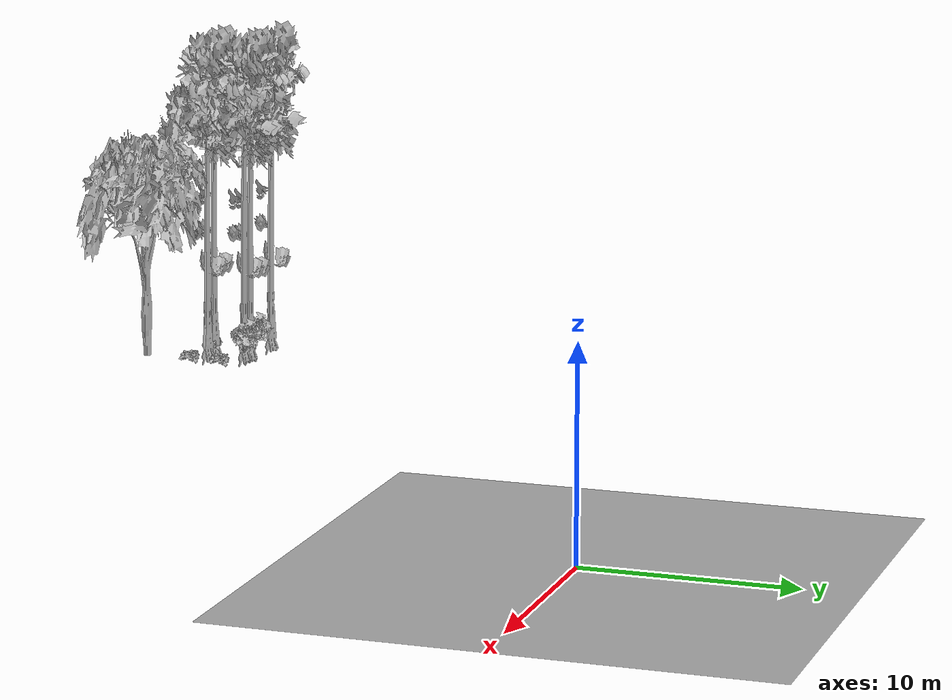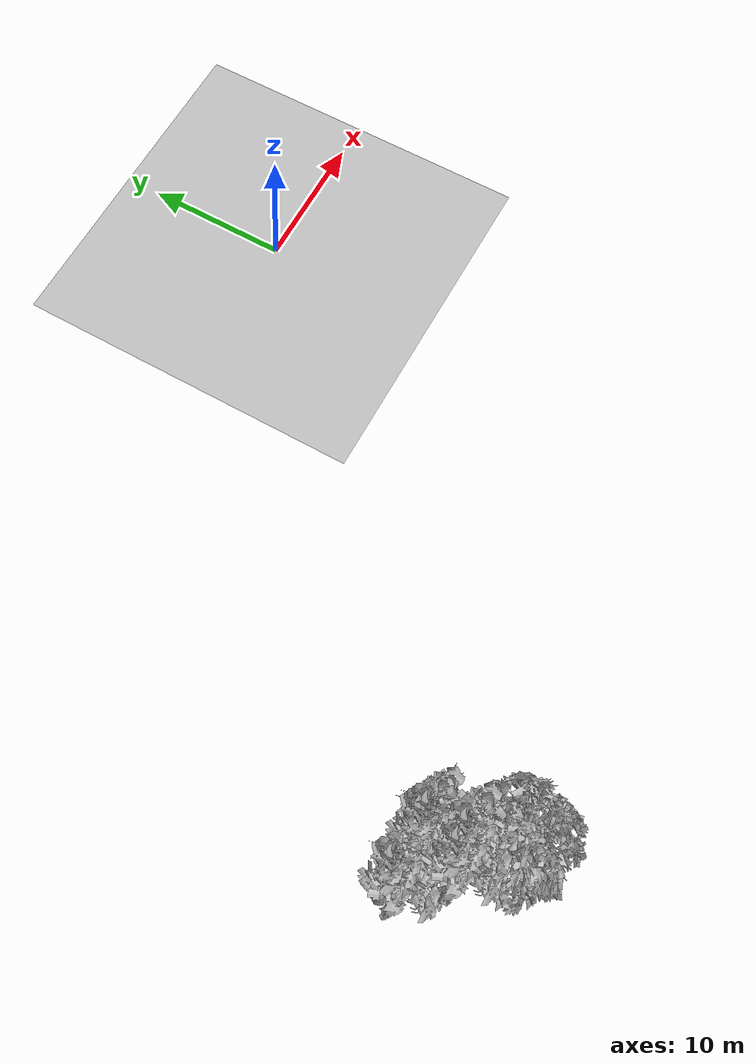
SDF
<sdf version="1.7">
 <world name="default">
  <model name="ground_plane">
   <static>1</static>
   <link name="link">
    <collision name="collision">
     <pose>-50 0 0 0 -0 0</pose>
     <geometry><plane><normal>0 0 1</normal><size>80 80</size></plane></geometry>
     <surface><contact><ode><min_depth>0.01</min_depth><max_vel>0</max_vel></ode></contact></surface>
    </collision>
    <visual name="grass">
     <cast_shadows>0</cast_shadows>
     <geometry>
      <mesh>
       <scale>0.46714285714285714 0.46714285714285714 0.1</scale>
       <uri>file://grass_plane/meshes/grass_plane.dae</uri>
      </mesh>
     </geometry>
    </visual>
   </link>
  </model>
  <model name="Tree 275">
   <static>1</static>
   <pose>-31.24578882245885 -33.744727753787494 0 1.57079 -0 0</pose>
   <link name="link">
    <collision name="collision">
     <geometry><mesh><scale>3.5 5 3.5</scale><uri>model://tree_2/meshes/tree_2.obj</uri></mesh></geometry>
    </collision>
    <visual name="visual">
     <geometry><mesh><scale>3.5 5 3.5</scale><uri>model://tree_2/meshes/tree_2.obj</uri></mesh></geometry>
    </visual>
   </link>
  </model>
  <model name="Tree 276">
   <static>1</static>
   <pose>-33.84621007006877 -29.200234330896517 0 1.57079 -0 0</pose>
   <link name="link">
    <collision name="collision">
     <geometry><mesh><scale>3.5 5 3.5</scale><uri>model://tree_9/meshes/tree_9.obj</uri></mesh></geometry>
    </collision>
    <visual name="visual">
     <geometry><mesh><scale>3.5 5 3.5</scale><uri>model://tree_9/meshes/tree_9.obj</uri></mesh></geometry>
    </visual>
   </link>
  </model>
  <model name="Tree 370">
   <static>1</static>
   <pose>-33.638118732959136 -31.243243150982998 0 1.57079 -0 0</pose>
   <link name="link">
    <collision name="collision">
     <geometry><mesh><scale>3.5 5 3.5</scale><uri>model://tree_9/meshes/tree_9.obj</uri></mesh></geometry>
    </collision>
    <visual name="visual">
     <geometry><mesh><scale>3.5 5 3.5</scale><uri>model://tree_9/meshes/tree_9.obj</uri></mesh></geometry>
    </visual>
   </link>
  </model>
  <model name="Tree 442">
   <static>1</static>
   <pose>-37.02790973664366 -28.90920849827892 0 1.57079 -0 0</pose>
   <link name="link">
    <collision name="collision">
     <geometry><mesh><scale>3.5 5 3.5</scale><uri>model://tree_9/meshes/tree_9.obj</uri></mesh></geometry>
    </collision>
    <visual name="visual">
     <geometry><mesh><scale>3.5 5 3.5</scale><uri>model://tree_9/meshes/tree_9.obj</uri></mesh></geometry>
    </visual>
   </link>
  </model>
  <model name="Tree 447">
   <static>1</static>
   <pose>-34.24623042665584 -29.006214268171302 0 1.57079 -0 0</pose>
   <link name="link">
    <collision name="collision">
     <geometry><mesh><scale>3.5 5 3.5</scale><uri>model://tree_9/meshes/tree_9.obj</uri></mesh></geometry>
    </collision>
    <visual name="visual">
     <geometry><mesh><scale>3.5 5 3.5</scale><uri>model://tree_9/meshes/tree_9.obj</uri></mesh></geometry>
    </visual>
   </link>
  </model>
  <model name="Tree 564">
   <static>1</static>
   <pose>-34.687092464134665 -31.29168452826584 0 1.57079 -0 0</pose>
   <link name="link">
    <collision name="collision">
     <geometry><mesh><scale>3.5 5 3.5</scale><uri>model://tree_9/meshes/tree_9.obj</uri></mesh></geometry>
    </collision>
    <visual name="visual">
     <geometry><mesh><scale>3.5 5 3.5</scale><uri>model://tree_9/meshes/tree_9.obj</uri></mesh></geometry>
    </visual>
   </link>
  </model>
  <model name="Bush 285">
   <static>1</static>
   <pose>-34.8001001454227 -31.471189666302266 0 1.57079 -0 0</pose>
   <link name="link">
    <collision name="collision">
     <geometry><mesh><scale>2 2 2</scale><uri>model://bush_2/meshes/bush_2.obj</uri></mesh></geometry>
     <surface><contact><collide_without_contact>false</collide_without_contact></contact></surface>
    </collision>
    <visual name="visual">
     <geometry><mesh><scale>2 2 2</scale><uri>model://bush_2/meshes/bush_2.obj</uri></mesh></geometry>
    </visual>
   </link>
  </model>
  <model name="Bush 328">
   <static>1</static>
   <pose>-31.458223966410564 -31.387157155026884 0 1.57079 -0 0</pose>
   <link name="link">
    <collision name="collision">
     <geometry><mesh><scale>2 2 2</scale><uri>model://bush_2/meshes/bush_2.obj</uri></mesh></geometry>
     <surface><contact><collide_without_contact>false</collide_without_contact></contact></surface>
    </collision>
    <visual name="visual">
     <geometry><mesh><scale>2 2 2</scale><uri>model://bush_2/meshes/bush_2.obj</uri></mesh></geometry>
    </visual>
   </link>
  </model>
  <model name="Bush 330">
   <static>1</static>
   <pose>-35.03194522509525 -29.108330152825115 0 1.57079 -0 0</pose>
   <link name="link">
    <collision name="collision">
     <geometry><mesh><scale>2 2 2</scale><uri>model://bush_1/meshes/bush_1.obj</uri></mesh></geometry>
     <surface><contact><collide_without_contact>false</collide_without_contact></contact></surface>
    </collision>
    <visual name="visual">
     <geometry><mesh><scale>2 2 2</scale><uri>model://bush_1/meshes/bush_1.obj</uri></mesh></geometry>
    </visual>
   </link>
  </model>
  <model name="Bush 333">
   <static>1</static>
   <pose>-33.460738265178215 -28.452214347048994 0 1.57079 -0 0</pose>
   <link name="link">
    <collision name="collision">
     <geometry><mesh><scale>2 2 2</scale><uri>model://bush_5/meshes/bush_5.obj</uri></mesh></geometry>
     <surface><contact><collide_without_contact>false</collide_without_contact></contact></surface>
    </collision>
    <visual name="visual">
     <geometry><mesh><scale>2 2 2</scale><uri>model://bush_5/meshes/bush_5.obj</uri></mesh></geometry>
    </visual>
   </link>
  </model>
  <model name="Bush 481">
   <static>1</static>
   <pose>-31.225796370591354 -29.56841004833267 0 1.57079 -0 0</pose>
   <link name="link">
    <collision name="collision">
     <geometry><mesh><scale>2 2 2</scale><uri>model://bush_2/meshes/bush_2.obj</uri></mesh></geometry>
     <surface><contact><collide_without_contact>false</collide_without_contact></contact></surface>
    </collision>
    <visual name="visual">
     <geometry><mesh><scale>2 2 2</scale><uri>model://bush_2/meshes/bush_2.obj</uri></mesh></geometry>
    </visual>
   </link>
  </model>
  <model name="Bush 593">
   <static>1</static>
   <pose>-33.32385078164104 -29.00303739432422 0 1.57079 -0 0</pose>
   <link name="link">
    <collision name="collision">
     <geometry><mesh><scale>2 2 2</scale><uri>model://bush_1/meshes/bush_1.obj</uri></mesh></geometry>
     <surface><contact><collide_without_contact>false</collide_without_contact></contact></surface>
    </collision>
    <visual name="visual">
     <geometry><mesh><scale>2 2 2</scale><uri>model://bush_1/meshes/bush_1.obj</uri></mesh></geometry>
    </visual>
   </link>
  </model>
 </world>
</sdf>
